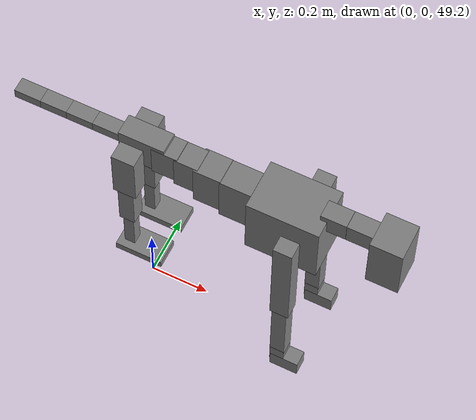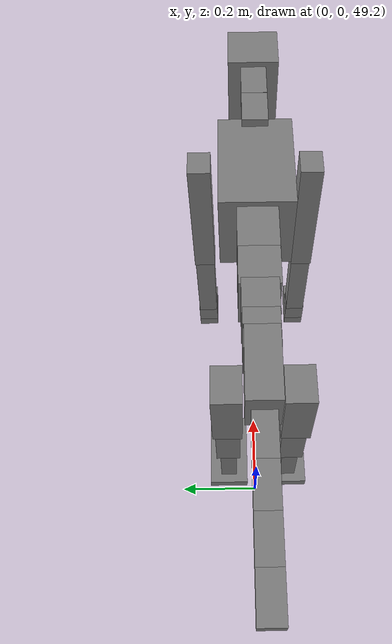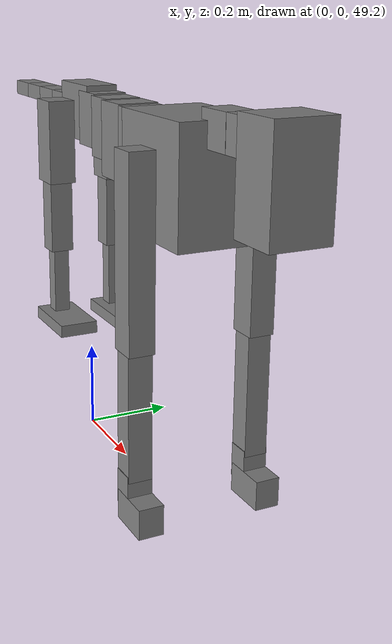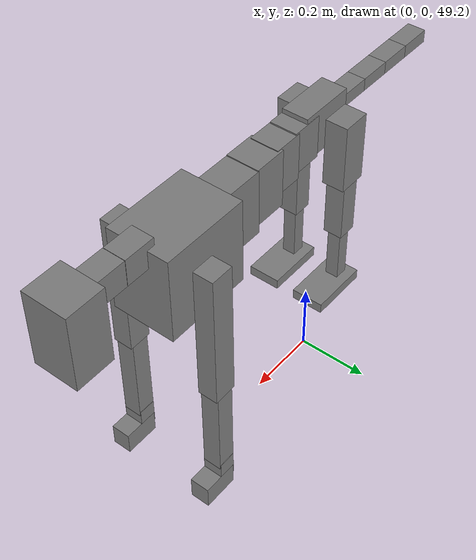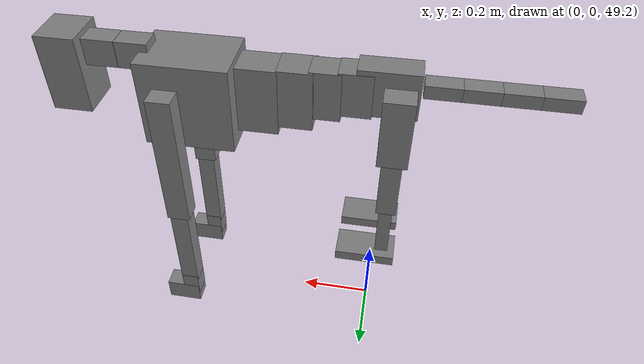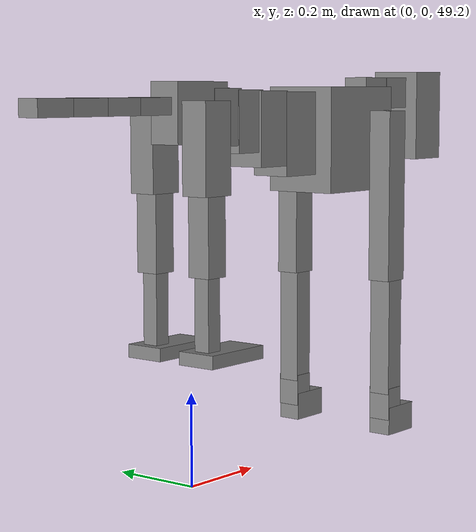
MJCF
<mujoco model="dog">

    <default>
        <joint armature="0.02" stiffness="1" damping="0.2" limited="true"/>
        <geom condim="3" friction="1 0.05 0.05" margin="0.01"/>
        <motor ctrllimited="true" ctrlrange="-1.0 1.0" forcelimited="true" gear="50"/>
    </default>

    <compiler inertiafromgeom="true" angle="radian"/>

    <option timestep="0.016" iterations="50" tolerance="1e-10" solver="Newton" jacobian="dense" cone="pyramidal"/>

    <size nconmax="20000" njmax="60000" nstack="5000000"/>
    <visual>
        <map force="0.1" zfar="30"/>
        <rgba haze="0.15 0.25 0.35 1"/>
        <quality shadowsize="2048"/>
        <global offwidth="800" offheight="800"/>
    </visual>

    <asset>
        <texture type="skybox" builtin="gradient" rgb1="0.3 0.5 0.7" rgb2="0 0 0" width="512" height="512"/>
        <texture name="texplane" type="2d" builtin="checker" rgb1=".2 .3 .4" rgb2=".1 0.15 0.2" width="512" height="512"
                 mark="cross" markrgb=".8 .8 .8"/>
        <texture name="texgeom" type="cube" builtin="flat" mark="cross" width="127" height="1278" rgb1="0.8 0.6 0.4"
                 rgb2="0.8 0.6 0.4" markrgb="1 1 1" random="0.01"/>

        <material name="matplane" reflectance="0.3" texture="texplane" texrepeat="1 1" texuniform="true"/>
        <material name="matgeom" texture="texgeom" texuniform="true" rgba="0.8 0.6 .4 1"/>
    </asset>

    <worldbody>
        <geom name="floor" pos="0 0 0" size="0 0 .25" type="plane" material="matplane" condim="3"/>

        <light directional="false" diffuse=".2 .2 .2" specular="0 0 0" pos="0 0 5" dir="0 0 -1" castshadow="false"/>
        <light mode="targetbodycom" target="torso" directional="false" diffuse=".8 .8 .8" specular="0.3 0.3 0.3"
               pos="0 0 4.0" dir="0 0 -1"/>

        <body name="root" pos="0 0 50">
            <freejoint name="root_1"/>
            <geom type="box" pos="0 0 -0.02" size="0.0774  0.0358  0.063" density="2030"/>

            <body name="spine1" pos="0.054 0 0">
                <joint name="spine1_y" axis="0 1 0" range="0 0.7" limited="true"/>
                <geom type="box" pos="0.02375 0 -0.03" size="0.04375  0.0375  0.05985" density="2030"/>

                <body name="spine2" pos="0.0612 0 0">
                    <joint name="spine2_y" axis="0 1 0" range="-0.15 0.15" limited="true"/>
                    <geom type="box" pos="0.03555  0  -0.04" size="0.04055  0.039  0.06615" density="2030"/>

                    <body name="spine3" pos="0.0730 0 0">
                        <joint name="spine3_y" axis="0 1 0" range="-0.15 0.15" limited="true"/>
                        <geom type="box" pos="0.03555  0  -0.057" size="0.04555  0.0445  0.081" density="2030"/>

                        <body name="spine4" pos="0.0780 0 0">
                            <joint name="spine4_y" axis="0 1 0" range="-0.15 0.15" limited="true"/>
                            <geom type="box" pos="0.05265  0  -0.07" size="0.05265  0.045  0.09135" density="2030"/>

                            <body name="torso" pos="0.1082 0 0">
                                <joint name="torso_y" axis="0 1 0" range="-0.15 0.15" limited="true"/>
                                <geom type="box" pos="0.11925  0  -0.085" size="0.11925  0.085  0.11745"
                                      density="2030"/>

                                <body name="neck1" pos="0.2160  0   0.0180">
                                    <joint name="neck1_y" axis="0 1 0" range="-1.2  -1" limited="true"/>
                                    <geom type="box" pos="0.0423  0  0" size="0.0423  0.03  0.036" density="2325"/>

                                    <body name="neck2" pos="0.0853  0  0">
                                        <joint name="neck2_y" axis="0 1 0" range="0.1  0" limited="true"/>
                                        <geom type="box" pos="0.0423  0  0" size="0.0423  0.03  0.036" density="2325"/>

                                        <body name="head" pos="0.0853  0  0">
                                            <joint name="head_y" axis="0 1 0" range="-0.3  -0.2" limited="true"/>
                                            <geom type="box" pos="0.0531  0  -0.055" size="0.0531  0.06  0.1044"
                                                  density="4030"/>

                                        </body>
                                    </body>
                                </body>

                                <body name="front_shoulder" pos="0.156  0   -0.0480">
                                    <joint name="front_shoulder_y" axis="0 1 0" range="-1 1.5" limited="true"/>
                                    <geom type="box" pos="0 0.13 -0.1656" size="0.0313  0.0267  0.1923" density="1158"/>
                                    <geom type="box" pos="0 -0.13 -0.1656" size="0.0313  0.0267  0.1923"
                                          density="1158"/>

                                    <body name="front_elbow" pos="0  0  -0.3313">
                                        <joint name="front_elbow_y" axis="0 1 0" range="-2 0" limited="true"/>
                                        <geom type="box" pos="0 0.13 -0.1439" size="0.0246  0.0251  0.1439"
                                              density="1081"/>
                                        <geom type="box" pos="0 -0.13 -0.1439" size="0.0246  0.0251  0.1439"
                                              density="1081"/>

                                        <body name="front_wrist" pos="0  0  -0.2877">
                                            <joint name="front_wrist_y" axis="0 1 0" range="-0.2 0" limited="true"/>
                                            <geom type="box" pos="0 0.13 -0.0233" size="0.0237  0.0263  0.0364"
                                                  density="1664"/>
                                            <geom type="box" pos="0 -0.13 -0.0233" size="0.0237  0.0263  0.0364"
                                                  density="1664"/>

                                            <body name="front_finger_end" pos="0  0  -0.0465">
                                                <joint name="front_finger_y" axis="0 1 0" range="-0.4 1"
                                                       limited="true"/>
                                                <geom type="box" pos="0.0264  0.13  -0.0165"
                                                      size="0.0484  0.0264  0.0315" density="1515"/>
                                                <geom type="box" pos="0.0264  -0.13  -0.0165"
                                                      size="0.0484  0.0264  0.0315" density="1515"/>

                                            </body>

                                        </body>
                                    </body>
                                </body>

                            </body>
                        </body>
                    </body>
                </body>
            </body>

            <body name="back_hip" pos="-0.03 0 -0.018">
                <joint name="back_hip_y" axis="0 1 0" range="-1.5 0.3" limited="true"/>
                <geom type="box" pos="0 0.07 -0.0720" size="0.0389  0.0305  0.0948" density="1154"/>
                <geom type="box" pos="0 -0.07 -0.0720" size="0.0389  0.0305  0.0948" density="1154"/>

                <body name="back_knee" pos="0  0  -0.1441">
                    <joint name="back_knee_y" axis="0 1 0" range="0 2.8" limited="true"/>
                    <geom type="box" pos="0 0.07 -0.0855" size="0.0265  0.0261  0.1011" density="1227"/>
                    <geom type="box" pos="0 -0.07 -0.0855" size="0.0265  0.0261  0.1011" density="1227"/>

                    <body name="back_ankle" pos="0  0  -0.1711">
                        <joint name="back_ankle_y" axis="0 1 0" range="-2.2 0" limited="true"/>
                        <geom type="box" pos="0 0.07 -0.0906" size="0.0180  0.0180  0.1019" density="1284"/>
                        <geom type="box" pos="0 -0.07 -0.0906" size="0.0180  0.0180  0.1019" density="1284"/>

                        <body name="back_toe_end" pos="0  0  -0.1813">
                            <joint name="back_toe_y" axis="0 1 0" range="-0.4 1" limited="true"/>
                            <geom type="box" pos="0.0442  0.07  0.0010" size="0.0811  0.0442  0.0140" density="1515"/>
                            <geom type="box" pos="0.0442  -0.07  0.0010" size="0.0811  0.0442  0.0140" density="1515"/>

                        </body>
                    </body>
                </body>
            </body>

            <body name="tail1" pos="-0.074 0 -0.006">
                <joint name="tail1_y" axis="0 1 0" range="-0.2 0.2" limited="true"/>
                <geom type="box" pos="-0.0536  0  0" size="0.045  0.025  0.0175" density="1587"/>

                <body name="tail2" pos="-0.09 0 0">
                    <joint name="tail2_y" axis="0 1 0" range="-0.2 0.2" limited="true"/>
                    <geom type="box" pos="-0.0536  0  0" size="0.045  0.025  0.0175" density="1587"/>

                    <body name="tail3" pos="-0.09 0 0">
                        <joint name="tail3_y" axis="0 1 0" range="-0.2 0.2" limited="true"/>
                        <geom type="box" pos="-0.0536  0  0" size="0.045  0.025  0.0175" density="1587"/>

                        <body name="tail4" pos="-0.09 0 0">
                            <joint name="tail4_y" axis="0 1 0" range="-0.2 0.2" limited="true"/>
                            <geom type="box" pos="-0.0536  0  0" size="0.045  0.025  0.0175" density="1587"/>

                        </body>
                    </body>
                </body>
            </body>
        </body>
    </worldbody>

    <actuator>
        <motor joint="spine1_y" forcerange="-150 150     "/>
        <motor joint="spine2_y" forcerange="-150 150     "/>
        <motor joint="spine3_y" forcerange="-150 150     "/>
        <motor joint="spine4_y" forcerange="-150 150     "/>
        <motor joint="torso_y" forcerange="-150 150     "/>
        <motor joint="neck1_y" forcerange="-100 100       "/>
        <motor joint="neck2_y" forcerange="-100 100       "/>
        <motor joint="head_y" forcerange="-150 150       "/>
        <motor joint="front_shoulder_y" forcerange="-112.01 166.32"/>
        <motor joint="front_elbow_y" forcerange="-159.95 122.87"/>
        <motor joint="front_wrist_y" forcerange="-135.59 74.71"/>
        <motor joint="front_finger_y" forcerange="-41.87 58.90"/>
        <motor joint="back_hip_y" forcerange="-386.95 220.00"/>
        <motor joint="back_knee_y" forcerange="-221.02 358.28"/>
        <motor joint="back_angle_y" forcerange="-68.79 118.75"/>
        <motor joint="back_toe_y" forcerange="-139.20 134.52"/>
        <motor joint="tail1_y" forcerange="-50 50     "/>
        <motor joint="tail2_y" forcerange="-50 50     "/>
        <motor joint="tail3_y" forcerange="-50 50     "/>
        <motor joint="tail4_y" forcerange="-50 50     "/>
    </actuator>
</mujoco>
